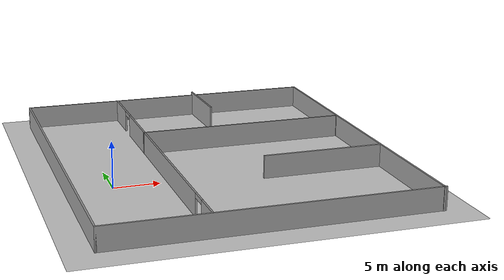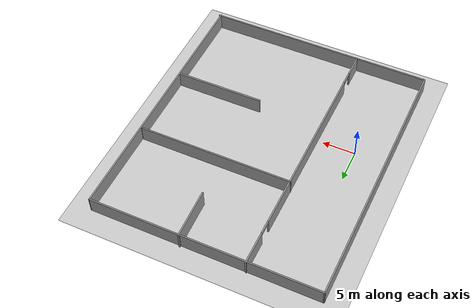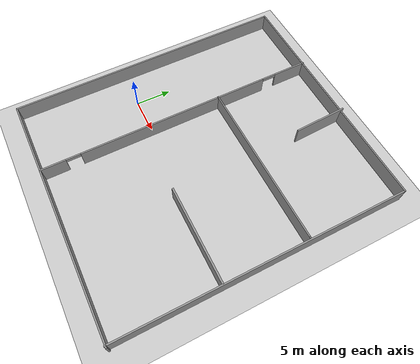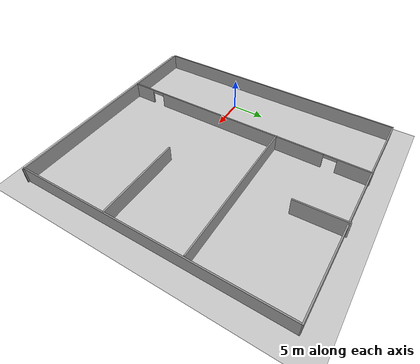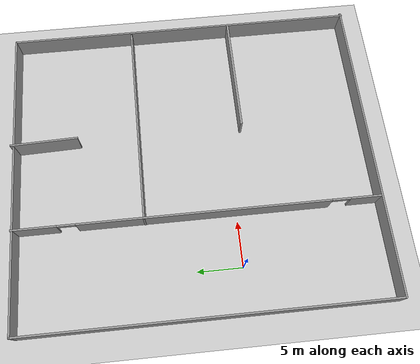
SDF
<sdf version="1.6">
 <world name="default">
  <light name="sun" type="directional">
   <pose>0 0 10 0 -0 0</pose>
   <diffuse>0.8 0.8 0.8 1</diffuse>
   <specular>0.2 0.2 0.2 1</specular>
   <attenuation>
    <range>1000</range>
    <constant>0.9</constant>
    <linear>0.01</linear>
    <quadratic>0.001</quadratic>
   </attenuation>
   <direction>-0.5 0.1 -0.9</direction>
  </light>
  <model name="ground_plane">
   <static>1</static>
   <link name="link">
    <collision name="collision">
     <geometry><plane><normal>0 0 1</normal><size>100 100</size></plane></geometry>
     <surface><friction><ode><mu>100</mu><mu2>50</mu2></ode></friction></surface>
    </collision>
    <visual name="visual">
     <cast_shadows>0</cast_shadows>
     <geometry><plane><normal>0 0 1</normal><size>100 100</size></plane></geometry>
     <material>
      <script><uri>file://media/materials/scripts/gazebo.material</uri><name>Gazebo/Grey</name></script>
     </material>
    </visual>
   </link>
  </model>
  <gravity>0 0 -9.8</gravity>
  <magnetic_field>6e-06 2.3e-05 -4.2e-05</magnetic_field>
  <atmosphere type="adiabatic"/>
  <physics name="default_physics" default="0" type="ode">
   <max_step_size>0.001</max_step_size>
   <real_time_factor>1</real_time_factor>
   <real_time_update_rate>1000</real_time_update_rate>
  </physics>
  <scene><ambient>0.4 0.4 0.4 1</ambient><background>0.7 0.7 0.7 1</background><shadows>1</shadows></scene>
  <spherical_coordinates>
   <surface_model>EARTH_WGS84</surface_model>
   <latitude_deg>0</latitude_deg>
   <longitude_deg>0</longitude_deg>
   <elevation>0</elevation>
   <heading_deg>0</heading_deg>
  </spherical_coordinates>
  <model name="floorplan4">
   <pose>12.2084 4.19428 0 0 -0 0</pose>
   <link name="Wall_10">
    <collision name="Wall_10_Collision">
     <geometry><box><size>34.3472 0.2 2.5</size></box></geometry>
     <pose>0 0 1.25 0 -0 0</pose>
    </collision>
    <visual name="Wall_10_Visual">
     <pose>0 0 1.25 0 -0 0</pose>
     <geometry><box><size>34.3472 0.2 2.5</size></box></geometry>
     <material>
      <script><uri>file://media/materials/scripts/gazebo.material</uri><name>Gazebo/Grey</name></script>
      <ambient>1 1 1 1</ambient>
     </material>
     <meta><layer>0</layer></meta>
    </visual>
    <pose>-0.101363 19.855 0 0 -0 -0.002079</pose>
   </link>
   <link name="Wall_11">
    <collision name="Wall_11_Collision">
     <geometry><box><size>40 0.2 2.5</size></box></geometry>
     <pose>0 0 1.25 0 -0 0</pose>
    </collision>
    <visual name="Wall_11_Visual">
     <pose>0 0 1.25 0 -0 0</pose>
     <geometry><box><size>40 0.2 2.5</size></box></geometry>
     <material>
      <script><uri>file://media/materials/scripts/gazebo.material</uri><name>Gazebo/Grey</name></script>
      <ambient>1 1 1 1</ambient>
     </material>
     <meta><layer>0</layer></meta>
    </visual>
    <pose>16.9721 -0.0805 0 0 -0 -1.5708</pose>
   </link>
   <link name="Wall_14">
    <collision name="Wall_14_Collision">
     <geometry><box><size>23.2997 0.2 2.5</size></box></geometry>
     <pose>0 0 1.25 0 -0 0</pose>
    </collision>
    <visual name="Wall_14_Visual">
     <pose>0 0 1.25 0 -0 0</pose>
     <geometry><box><size>23.2997 0.2 2.5</size></box></geometry>
     <material>
      <script><uri>file://media/materials/scripts/gazebo.material</uri><name>Gazebo/Grey</name></script>
      <ambient>1 1 1 1</ambient>
     </material>
     <meta><layer>0</layer></meta>
    </visual>
    <pose>5.15614 5.9085 0 0 -0 0</pose>
   </link>
   <link name="Wall_15">
    <collision name="Wall_15_Collision">
     <geometry><box><size>0.15 0.15 2.5</size></box></geometry>
     <pose>0 0 1.25 0 -0 0</pose>
    </collision>
    <visual name="Wall_15_Visual">
     <pose>0 0 1.25 0 -0 0</pose>
     <geometry><box><size>0.15 0.15 2.5</size></box></geometry>
     <material>
      <script><uri>file://media/materials/scripts/gazebo.material</uri><name>Gazebo/Grey</name></script>
      <ambient>1 1 1 1</ambient>
     </material>
     <meta><layer>0</layer></meta>
    </visual>
    <pose>16.7061 5.9085 0 0 -0 0</pose>
   </link>
   <link name="Wall_16">
    <collision name="Wall_16_Collision">
     <geometry><box><size>0.25 0.15 2.5</size></box></geometry>
     <pose>0 0 1.25 0 -0 0</pose>
    </collision>
    <visual name="Wall_16_Visual">
     <pose>0 0 1.25 0 -0 0</pose>
     <geometry><box><size>0.25 0.15 2.5</size></box></geometry>
     <material>
      <script><uri>file://media/materials/scripts/gazebo.material</uri><name>Gazebo/Grey</name></script>
      <ambient>1 1 1 1</ambient>
     </material>
     <meta><layer>0</layer></meta>
    </visual>
    <pose>16.756 5.90849 0 0 -0 -0.000155</pose>
   </link>
   <link name="Wall_18">
    <collision name="Wall_18_Collision">
     <geometry><box><size>34.55 0.2 2.5</size></box></geometry>
     <pose>0 0 1.25 0 -0 0</pose>
    </collision>
    <visual name="Wall_18_Visual">
     <pose>0 0 1.25 0 -0 0</pose>
     <geometry><box><size>34.55 0.2 2.5</size></box></geometry>
     <material>
      <script><uri>file://media/materials/scripts/gazebo.material</uri><name>Gazebo/Grey</name></script>
      <ambient>1 1 1 1</ambient>
     </material>
     <meta><layer>0</layer></meta>
    </visual>
    <pose>0.000136 -19.9095 0 0 -0 0</pose>
   </link>
   <link name="Wall_20">
    <collision name="Wall_20_Collision">
     <geometry><box><size>13.3504 0.25 2.5</size></box></geometry>
     <pose>0 0 1.25 0 -0 0</pose>
    </collision>
    <visual name="Wall_20_Visual">
     <pose>0 0 1.25 0 -0 0</pose>
     <geometry><box><size>13.3504 0.25 2.5</size></box></geometry>
     <material>
      <script><uri>file://media/materials/scripts/gazebo.material</uri><name>Gazebo/Grey</name></script>
      <ambient>1 1 1 1</ambient>
     </material>
     <meta><layer>0</layer></meta>
    </visual>
    <pose>10.2621 -5.8585 0 0 -0 3.14159</pose>
   </link>
   <link name="Wall_4">
    <collision name="Wall_4_Collision">
     <geometry><box><size>40 0.2 2.5</size></box></geometry>
     <pose>0 0 1.25 0 -0 0</pose>
    </collision>
    <visual name="Wall_4_Visual">
     <pose>0 0 1.25 0 -0 0</pose>
     <geometry><box><size>40 0.2 2.5</size></box></geometry>
     <material>
      <script><uri>file://media/materials/scripts/gazebo.material</uri><name>Gazebo/Grey</name></script>
      <ambient>1 1 1 1</ambient>
     </material>
     <meta><layer>0</layer></meta>
    </visual>
    <pose>-17.1749 -0.0095 0 0 -0 -1.5708</pose>
   </link>
   <link name="Wall_6">
    <pose>-6.35386 0.0805 0 0 -0 -1.5708</pose>
    <visual name="Wall_6_Visual_0">
     <pose>-17.5303 0 1.25 0 -0 0</pose>
     <geometry><box><size>4.93939 0.2 2.5</size></box></geometry>
     <material>
      <script><uri>file://media/materials/scripts/gazebo.material</uri><name>Gazebo/Grey</name></script>
      <ambient>1 1 1 1</ambient>
     </material>
     <meta><layer>0</layer></meta>
    </visual>
    <collision name="Wall_6_Collision_0">
     <geometry><box><size>4.93939 0.2 2.5</size></box></geometry>
     <pose>-17.5303 0 1.25 0 -0 0</pose>
    </collision>
    <visual name="Wall_6_Visual_1">
     <pose>0.731318 0 1.25 0 -0 0</pose>
     <geometry><box><size>27.5839 0.2 2.5</size></box></geometry>
     <material>
      <script><uri>file://media/materials/scripts/gazebo.material</uri><name>Gazebo/Grey</name></script>
      <ambient>1 1 1 1</ambient>
     </material>
     <meta><layer>0</layer></meta>
    </visual>
    <collision name="Wall_6_Collision_1">
     <geometry><box><size>27.5839 0.2 2.5</size></box></geometry>
     <pose>0.731318 0 1.25 0 -0 0</pose>
    </collision>
    <visual name="Wall_6_Visual_2">
     <pose>18.2616 0 1.25 0 -0 0</pose>
     <geometry><box><size>3.47675 0.2 2.5</size></box></geometry>
     <material>
      <script><uri>file://media/materials/scripts/gazebo.material</uri><name>Gazebo/Grey</name></script>
      <ambient>1 1 1 1</ambient>
     </material>
     <meta><layer>0</layer></meta>
    </visual>
    <collision name="Wall_6_Collision_2">
     <geometry><box><size>3.47675 0.2 2.5</size></box></geometry>
     <pose>18.2616 0 1.25 0 -0 0</pose>
    </collision>
    <visual name="Wall_6_Visual_3">
     <pose>-14.0606 0 2.25 0 -0 0</pose>
     <geometry><box><size>2 0.2 0.5</size></box></geometry>
     <material>
      <script><uri>file://media/materials/scripts/gazebo.material</uri><name>Gazebo/Grey</name></script>
      <ambient>1 1 1 1</ambient>
     </material>
     <meta><layer>0</layer></meta>
    </visual>
    <collision name="Wall_6_Collision_3">
     <geometry><box><size>2 0.2 0.5</size></box></geometry>
     <pose>-14.0606 0 2.25 0 -0 0</pose>
    </collision>
    <visual name="Wall_6_Visual_4">
     <pose>15.5232 0 2.25 0 -0 0</pose>
     <geometry><box><size>2 0.2 0.5</size></box></geometry>
     <material>
      <script><uri>file://media/materials/scripts/gazebo.material</uri><name>Gazebo/Grey</name></script>
      <ambient>1 1 1 1</ambient>
     </material>
     <meta><layer>0</layer></meta>
    </visual>
    <collision name="Wall_6_Collision_4">
     <geometry><box><size>2 0.2 0.5</size></box></geometry>
     <pose>15.5232 0 2.25 0 -0 0</pose>
    </collision>
   </link>
   <static>1</static>
  </model>
  <model name="grey_wall">
   <static>1</static>
   <link name="link">
    <pose>0 0 1.4 0 -0 0</pose>
    <collision name="collision"><geometry><box><size>7.5 0.2 2.8</size></box></geometry></collision>
    <visual name="visual">
     <cast_shadows>0</cast_shadows>
     <geometry><box><size>7.5 0.2 2.8</size></box></geometry>
     <material>
      <script>
       <uri>model://grey_wall/materials/scripts</uri>
       <uri>model://grey_wall/materials/textures</uri>
       <name>vrc/grey_wall</name>
      </script>
     </material>
    </visual>
   </link>
   <pose>15.6066 20.6229 0 0.000199 0.006069 -1.53807</pose>
  </model>
 </world>
</sdf>
